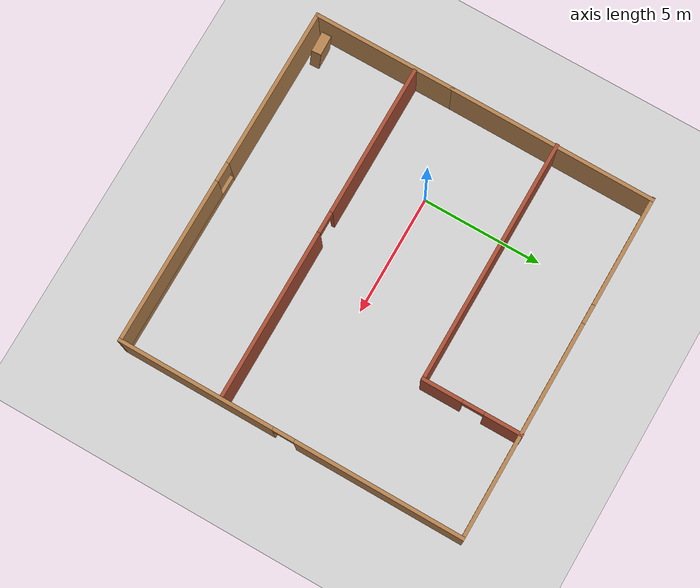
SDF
<sdf version="1.7">
 <world name="default">
  <light name="sun" type="directional">
   <pose>0 0 10 0 -0 0</pose>
   <diffuse>0.8 0.8 0.8 1</diffuse>
   <specular>0.2 0.2 0.2 1</specular>
   <attenuation>
    <range>1000</range>
    <constant>0.9</constant>
    <linear>0.01</linear>
    <quadratic>0.001</quadratic>
   </attenuation>
   <direction>-0.5 0.1 -0.9</direction>
   <spot><inner_angle>0</inner_angle><outer_angle>0</outer_angle><falloff>0</falloff></spot>
  </light>
  <model name="ground_plane">
   <static>1</static>
   <link name="link">
    <collision name="collision">
     <geometry><plane><normal>0 0 1</normal><size>100 100</size></plane></geometry>
     <surface><friction><ode><mu>100</mu><mu2>50</mu2></ode></friction></surface>
    </collision>
    <visual name="visual">
     <cast_shadows>0</cast_shadows>
     <geometry><plane><normal>0 0 1</normal><size>100 100</size></plane></geometry>
     <material>
      <script><uri>file://media/materials/scripts/gazebo.material</uri><name>Gazebo/Grey</name></script>
     </material>
    </visual>
   </link>
  </model>
  <gravity>0 0 -9.8</gravity>
  <magnetic_field>6e-06 2.3e-05 -4.2e-05</magnetic_field>
  <atmosphere type="adiabatic"/>
  <physics type="ode">
   <max_step_size>0.001</max_step_size>
   <real_time_factor>1</real_time_factor>
   <real_time_update_rate>1000</real_time_update_rate>
  </physics>
  <scene><ambient>0.4 0.4 0.4 1</ambient><background>0.7 0.7 0.7 1</background><shadows>1</shadows></scene>
  <audio><device>default</device></audio>
  <spherical_coordinates>
   <surface_model>EARTH_WGS84</surface_model>
   <latitude_deg>0</latitude_deg>
   <longitude_deg>0</longitude_deg>
   <elevation>0</elevation>
   <heading_deg>0</heading_deg>
  </spherical_coordinates>
  <model name="test_1">
   <pose>3.48471 0.371849 0 0 -0 0</pose>
   <link name="Wall_0">
    <collision name="Wall_0_Collision">
     <geometry><box><size>6 0.15 2.5</size></box></geometry>
     <pose>0 0 1.25 0 -0 0</pose>
    </collision>
    <visual name="Wall_0_Visual">
     <pose>0 0 1.25 0 -0 0</pose>
     <geometry><box><size>6 0.15 2.5</size></box></geometry>
     <material>
      <script><uri>file://media/materials/scripts/gazebo.material</uri><name>Gazebo/Wood</name></script>
      <ambient>1 1 1 1</ambient>
     </material>
     <meta><layer>0</layer></meta>
    </visual>
    <pose>-7.19471 -4.28685 0 0 -0 -1.5708</pose>
   </link>
   <link name="Wall_1">
    <pose>-0.019714 -7.21185 0 0 -0 0</pose>
    <visual name="Wall_1_Visual_0">
     <pose>-3.88609 0 1.25 0 -0 0</pose>
     <geometry><box><size>6.72782 0.15 2.5</size></box></geometry>
     <material>
      <script><uri>file://media/materials/scripts/gazebo.material</uri><name>Gazebo/Wood</name></script>
      <ambient>1 1 1 1</ambient>
     </material>
     <meta><layer>0</layer></meta>
    </visual>
    <collision name="Wall_1_Collision_0">
     <geometry><box><size>6.72782 0.15 2.5</size></box></geometry>
     <pose>-3.88609 0 1.25 0 -0 0</pose>
    </collision>
    <visual name="Wall_1_Visual_1">
     <pose>3.36391 0 0.25 0 -0 0</pose>
     <geometry><box><size>7.77218 0.15 0.5</size></box></geometry>
     <material>
      <script><uri>file://media/materials/scripts/gazebo.material</uri><name>Gazebo/Wood</name></script>
      <ambient>1 1 1 1</ambient>
     </material>
     <meta><layer>0</layer></meta>
    </visual>
    <collision name="Wall_1_Collision_1">
     <geometry><box><size>7.77218 0.15 0.5</size></box></geometry>
     <pose>3.36391 0 0.25 0 -0 0</pose>
    </collision>
    <visual name="Wall_1_Visual_2">
     <pose>3.76391 0 1.5 0 -0 0</pose>
     <geometry><box><size>6.97218 0.15 2</size></box></geometry>
     <material>
      <script><uri>file://media/materials/scripts/gazebo.material</uri><name>Gazebo/Wood</name></script>
      <ambient>1 1 1 1</ambient>
     </material>
     <meta><layer>0</layer></meta>
    </visual>
    <collision name="Wall_1_Collision_2">
     <geometry><box><size>6.97218 0.15 2</size></box></geometry>
     <pose>3.76391 0 1.5 0 -0 0</pose>
    </collision>
    <visual name="Wall_1_Visual_3">
     <pose>-0.122182 0 1.9 0 -0 0</pose>
     <geometry><box><size>0.8 0.15 1.2</size></box></geometry>
     <material>
      <script><uri>file://media/materials/scripts/gazebo.material</uri><name>Gazebo/Wood</name></script>
      <ambient>1 1 1 1</ambient>
     </material>
     <meta><layer>0</layer></meta>
    </visual>
    <collision name="Wall_1_Collision_3">
     <geometry><box><size>0.8 0.15 1.2</size></box></geometry>
     <pose>-0.122182 0 1.9 0 -0 0</pose>
    </collision>
   </link>
   <link name="Wall_2">
    <pose>7.17836 -0.011337 0 0 -0 1.56759</pose>
    <visual name="Wall_2_Visual_0">
     <pose>-3.99225 0 1.25 0 -0 0</pose>
     <geometry><box><size>6.56659 0.15 2.5</size></box></geometry>
     <material>
      <script><uri>file://media/materials/scripts/gazebo.material</uri><name>Gazebo/Wood</name></script>
      <ambient>1 1 1 1</ambient>
     </material>
     <meta><layer>0</layer></meta>
    </visual>
    <collision name="Wall_2_Collision_0">
     <geometry><box><size>6.56659 0.15 2.5</size></box></geometry>
     <pose>-3.99225 0 1.25 0 -0 0</pose>
    </collision>
    <visual name="Wall_2_Visual_1">
     <pose>3.73329 0 1.25 0 -0 0</pose>
     <geometry><box><size>7.08451 0.15 2.5</size></box></geometry>
     <material>
      <script><uri>file://media/materials/scripts/gazebo.material</uri><name>Gazebo/Wood</name></script>
      <ambient>1 1 1 1</ambient>
     </material>
     <meta><layer>0</layer></meta>
    </visual>
    <collision name="Wall_2_Collision_1">
     <geometry><box><size>7.08451 0.15 2.5</size></box></geometry>
     <pose>3.73329 0 1.25 0 -0 0</pose>
    </collision>
    <visual name="Wall_2_Visual_2">
     <pose>-0.25896 0 2.25 0 -0 0</pose>
     <geometry><box><size>0.9 0.15 0.5</size></box></geometry>
     <material>
      <script><uri>file://media/materials/scripts/gazebo.material</uri><name>Gazebo/Wood</name></script>
      <ambient>1 1 1 1</ambient>
     </material>
     <meta><layer>0</layer></meta>
    </visual>
    <collision name="Wall_2_Collision_2">
     <geometry><box><size>0.9 0.15 0.5</size></box></geometry>
     <pose>-0.25896 0 2.25 0 -0 0</pose>
    </collision>
   </link>
   <link name="Wall_3">
    <pose>-0.00416 7.18917 0 0 -0 3.14159</pose>
    <visual name="Wall_3_Visual_0">
     <pose>-2.73202 0 1.25 0 -0 0</pose>
     <geometry><box><size>9.03595 0.15 2.5</size></box></geometry>
     <material>
      <script><uri>file://media/materials/scripts/gazebo.material</uri><name>Gazebo/Wood</name></script>
      <ambient>1 1 1 1</ambient>
     </material>
     <meta><layer>0</layer></meta>
    </visual>
    <collision name="Wall_3_Collision_0">
     <geometry><box><size>9.03595 0.15 2.5</size></box></geometry>
     <pose>-2.73202 0 1.25 0 -0 0</pose>
    </collision>
    <visual name="Wall_3_Visual_1">
     <pose>4.51798 0 0.25 0 -0 0</pose>
     <geometry><box><size>5.46405 0.15 0.5</size></box></geometry>
     <material>
      <script><uri>file://media/materials/scripts/gazebo.material</uri><name>Gazebo/Wood</name></script>
      <ambient>1 1 1 1</ambient>
     </material>
     <meta><layer>0</layer></meta>
    </visual>
    <collision name="Wall_3_Collision_1">
     <geometry><box><size>5.46405 0.15 0.5</size></box></geometry>
     <pose>4.51798 0 0.25 0 -0 0</pose>
    </collision>
    <visual name="Wall_3_Visual_2">
     <pose>4.91798 0 1.5 0 -0 0</pose>
     <geometry><box><size>4.66405 0.15 2</size></box></geometry>
     <material>
      <script><uri>file://media/materials/scripts/gazebo.material</uri><name>Gazebo/Wood</name></script>
      <ambient>1 1 1 1</ambient>
     </material>
     <meta><layer>0</layer></meta>
    </visual>
    <collision name="Wall_3_Collision_2">
     <geometry><box><size>4.66405 0.15 2</size></box></geometry>
     <pose>4.91798 0 1.5 0 -0 0</pose>
    </collision>
    <visual name="Wall_3_Visual_3">
     <pose>2.18595 0 1.9 0 -0 0</pose>
     <geometry><box><size>0.8 0.15 1.2</size></box></geometry>
     <material>
      <script><uri>file://media/materials/scripts/gazebo.material</uri><name>Gazebo/Wood</name></script>
      <ambient>1 1 1 1</ambient>
     </material>
     <meta><layer>0</layer></meta>
    </visual>
    <collision name="Wall_3_Collision_3">
     <geometry><box><size>0.8 0.15 1.2</size></box></geometry>
     <pose>2.18595 0 1.9 0 -0 0</pose>
    </collision>
   </link>
   <link name="Wall_4">
    <collision name="Wall_4_Collision">
     <geometry><box><size>8.70115 0.15 2.5</size></box></geometry>
     <pose>0 0 1.25 0 -0 0</pose>
    </collision>
    <visual name="Wall_4_Visual">
     <pose>0 0 1.25 0 -0 0</pose>
     <geometry><box><size>8.70115 0.15 2.5</size></box></geometry>
     <material>
      <script><uri>file://media/materials/scripts/gazebo.material</uri><name>Gazebo/Wood</name></script>
      <ambient>1 1 1 1</ambient>
     </material>
     <meta><layer>0</layer></meta>
    </visual>
    <pose>-7.17164 2.91366 0 0 -0 -1.57619</pose>
   </link>
   <link name="Wall_6">
    <collision name="Wall_6_Collision">
     <geometry><box><size>10.25 0.15 2.5</size></box></geometry>
     <pose>0 0 1.25 0 -0 0</pose>
    </collision>
    <visual name="Wall_6_Visual">
     <pose>0 0 1.25 0 -0 0</pose>
     <geometry><box><size>10.25 0.15 2.5</size></box></geometry>
     <material>
      <script><uri>file://media/materials/scripts/gazebo.material</uri><name>Gazebo/Bricks</name></script>
      <ambient>1 1 1 1</ambient>
     </material>
     <meta><layer>0</layer></meta>
    </visual>
    <pose>-2.15167 3.11209 0 0 -0 0</pose>
   </link>
   <link name="Wall_7">
    <pose>2.89833 5.16209 0 0 -0 1.5708</pose>
    <visual name="Wall_7_Visual_0">
     <pose>-1.2634 0 1.25 0 -0 0</pose>
     <geometry><box><size>1.72321 0.15 2.5</size></box></geometry>
     <material>
      <script><uri>file://media/materials/scripts/gazebo.material</uri><name>Gazebo/Bricks</name></script>
      <ambient>1 1 1 1</ambient>
     </material>
     <meta><layer>0</layer></meta>
    </visual>
    <collision name="Wall_7_Collision_0">
     <geometry><box><size>1.72321 0.15 2.5</size></box></geometry>
     <pose>-1.2634 0 1.25 0 -0 0</pose>
    </collision>
    <visual name="Wall_7_Visual_1">
     <pose>1.3116 0 1.25 0 -0 0</pose>
     <geometry><box><size>1.62679 0.15 2.5</size></box></geometry>
     <material>
      <script><uri>file://media/materials/scripts/gazebo.material</uri><name>Gazebo/Bricks</name></script>
      <ambient>1 1 1 1</ambient>
     </material>
     <meta><layer>0</layer></meta>
    </visual>
    <collision name="Wall_7_Collision_1">
     <geometry><box><size>1.62679 0.15 2.5</size></box></geometry>
     <pose>1.3116 0 1.25 0 -0 0</pose>
    </collision>
    <visual name="Wall_7_Visual_2">
     <pose>0.048208 0 2.25 0 -0 0</pose>
     <geometry><box><size>0.9 0.15 0.5</size></box></geometry>
     <material>
      <script><uri>file://media/materials/scripts/gazebo.material</uri><name>Gazebo/Bricks</name></script>
      <ambient>1 1 1 1</ambient>
     </material>
     <meta><layer>0</layer></meta>
    </visual>
    <collision name="Wall_7_Collision_2">
     <geometry><box><size>0.9 0.15 0.5</size></box></geometry>
     <pose>0.048208 0 2.25 0 -0 0</pose>
    </collision>
   </link>
   <link name="Wall_9">
    <pose>-0.034548 -2.92936 0 0 -0 0</pose>
    <visual name="Wall_9_Visual_0">
     <pose>-3.96088 0 1.25 0 -0 0</pose>
     <geometry><box><size>6.32825 0.15 2.5</size></box></geometry>
     <material>
      <script><uri>file://media/materials/scripts/gazebo.material</uri><name>Gazebo/Bricks</name></script>
      <ambient>1 1 1 1</ambient>
     </material>
     <meta><layer>0</layer></meta>
    </visual>
    <collision name="Wall_9_Collision_0">
     <geometry><box><size>6.32825 0.15 2.5</size></box></geometry>
     <pose>-3.96088 0 1.25 0 -0 0</pose>
    </collision>
    <visual name="Wall_9_Visual_1">
     <pose>3.61413 0 1.25 0 -0 0</pose>
     <geometry><box><size>7.02175 0.15 2.5</size></box></geometry>
     <material>
      <script><uri>file://media/materials/scripts/gazebo.material</uri><name>Gazebo/Bricks</name></script>
      <ambient>1 1 1 1</ambient>
     </material>
     <meta><layer>0</layer></meta>
    </visual>
    <collision name="Wall_9_Collision_1">
     <geometry><box><size>7.02175 0.15 2.5</size></box></geometry>
     <pose>3.61413 0 1.25 0 -0 0</pose>
    </collision>
    <visual name="Wall_9_Visual_2">
     <pose>-0.34675 0 2.25 0 -0 0</pose>
     <geometry><box><size>0.9 0.15 0.5</size></box></geometry>
     <material>
      <script><uri>file://media/materials/scripts/gazebo.material</uri><name>Gazebo/Bricks</name></script>
      <ambient>1 1 1 1</ambient>
     </material>
     <meta><layer>0</layer></meta>
    </visual>
    <collision name="Wall_9_Collision_2">
     <geometry><box><size>0.9 0.15 0.5</size></box></geometry>
     <pose>-0.34675 0 2.25 0 -0 0</pose>
    </collision>
   </link>
   <static>1</static>
  </model>
  <model name="bookshelf">
   <static>1</static>
   <link name="link">
    <inertial><mass>1</mass></inertial>
    <collision name="back">
     <pose>0 0.005 0.6 0 -0 0</pose>
     <geometry><box><size>0.9 0.01 1.2</size></box></geometry>
    </collision>
    <visual name="visual1">
     <pose>0 0.005 0.6 0 -0 0</pose>
     <geometry><box><size>0.9 0.01 1.2</size></box></geometry>
     <material>
      <script><uri>file://media/materials/scripts/gazebo.material</uri><name>Gazebo/Wood</name></script>
     </material>
    </visual>
    <collision name="left_side">
     <pose>0.45 -0.195 0.6 0 -0 0</pose>
     <geometry><box><size>0.02 0.4 1.2</size></box></geometry>
    </collision>
    <visual name="visual2">
     <pose>0.45 -0.195 0.6 0 -0 0</pose>
     <geometry><box><size>0.02 0.4 1.2</size></box></geometry>
     <material>
      <script><uri>file://media/materials/scripts/gazebo.material</uri><name>Gazebo/Wood</name></script>
     </material>
    </visual>
    <collision name="right_side">
     <pose>-0.45 -0.195 0.6 0 -0 0</pose>
     <geometry><box><size>0.02 0.4 1.2</size></box></geometry>
    </collision>
    <visual name="visual3">
     <pose>-0.45 -0.195 0.6 0 -0 0</pose>
     <geometry><box><size>0.02 0.4 1.2</size></box></geometry>
     <material>
      <script><uri>file://media/materials/scripts/gazebo.material</uri><name>Gazebo/Wood</name></script>
     </material>
    </visual>
    <collision name="bottom">
     <pose>0 -0.195 0.03 0 -0 0</pose>
     <geometry><box><size>0.88 0.4 0.06</size></box></geometry>
    </collision>
    <visual name="visual4">
     <pose>0 -0.195 0.03 0 -0 0</pose>
     <geometry><box><size>0.88 0.4 0.06</size></box></geometry>
     <material>
      <script><uri>file://media/materials/scripts/gazebo.material</uri><name>Gazebo/Wood</name></script>
     </material>
    </visual>
    <collision name="top">
     <pose>0 -0.195 1.19 0 -0 0</pose>
     <geometry><box><size>0.88 0.4 0.02</size></box></geometry>
    </collision>
    <visual name="visual5">
     <pose>0 -0.195 1.19 0 -0 0</pose>
     <geometry><box><size>0.88 0.4 0.02</size></box></geometry>
     <material>
      <script><uri>file://media/materials/scripts/gazebo.material</uri><name>Gazebo/Wood</name></script>
     </material>
    </visual>
    <collision name="low_shelf">
     <pose>0 -0.195 0.43 0 -0 0</pose>
     <geometry><box><size>0.88 0.4 0.02</size></box></geometry>
    </collision>
    <visual name="visual6">
     <pose>0 -0.195 0.43 0 -0 0</pose>
     <geometry><box><size>0.88 0.4 0.02</size></box></geometry>
     <material>
      <script><uri>file://media/materials/scripts/gazebo.material</uri><name>Gazebo/Wood</name></script>
     </material>
    </visual>
    <collision name="high_shelf">
     <pose>0 -0.195 0.8 0 -0 0</pose>
     <geometry><box><size>0.88 0.4 0.02</size></box></geometry>
    </collision>
    <visual name="visual7">
     <pose>0 -0.195 0.8 0 -0 0</pose>
     <geometry><box><size>0.88 0.4 0.02</size></box></geometry>
     <material>
      <script><uri>file://media/materials/scripts/gazebo.material</uri><name>Gazebo/Wood</name></script>
     </material>
    </visual>
   </link>
   <pose>-2.96673 -6.20812 -0 -0.018654 -0.161689 0.058521</pose>
  </model>
 </world>
</sdf>
